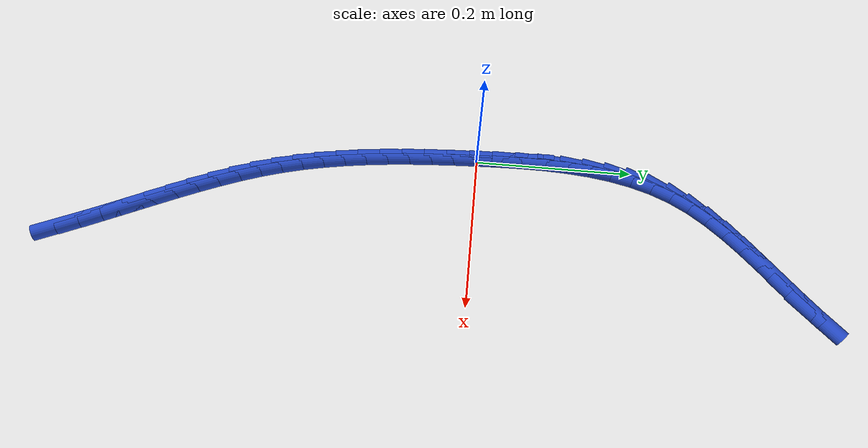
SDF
<sdf version="1.6">
 <world name="default">
  <model name="ground_plane">
   <static>1</static>
   <link name="link">
    <collision name="collision">
     <geometry><plane><normal>0 0 1</normal><size>100 100</size></plane></geometry>
     <surface><friction><ode><mu>100</mu><mu2>50</mu2></ode></friction></surface>
    </collision>
    <visual name="visual">
     <cast_shadows>0</cast_shadows>
     <geometry><plane><normal>0 0 1</normal><size>100 100</size></plane></geometry>
     <material>
      <script><uri>file://media/materials/scripts/gazebo.material</uri><name>Gazebo/WhiteGlow</name></script>
     </material>
    </visual>
   </link>
  </model>
  <model name="line">
   <link name="link_0">
    <pose>-7.589415207398531e-19 -2.0816681711721685e-17 0.01 0 1.57 -1.5354599445000783</pose>
    <collision name="collision">
     <geometry><cylinder><radius>0.01</radius><length>0.08</length></cylinder></geometry>
    </collision>
    <visual name="visual">
     <material>
      <script><name>Gazebo/Blue</name><uri>file://media/materials/scripts/gazebo.material</uri></script>
     </material>
     <geometry><cylinder><radius>0.01</radius><length>0.08</length></cylinder></geometry>
    </visual>
   </link>
   <link name="link_1">
    <pose>-0.001038721061731485 0.029382993443548264 0.01 0 1.57 -1.5521858249136637</pose>
    <collision name="collision">
     <geometry><cylinder><radius>0.01</radius><length>0.08</length></cylinder></geometry>
    </collision>
    <visual name="visual">
     <material>
      <script><name>Gazebo/Blue</name><uri>file://media/materials/scripts/gazebo.material</uri></script>
     </material>
     <geometry><cylinder><radius>0.01</radius><length>0.08</length></cylinder></geometry>
    </visual>
   </link>
   <link name="link_2">
    <pose>-0.0015868101717463985 0.05883012146947917 0.01 0 1.57 1.5636319544767618</pose>
    <collision name="collision">
     <geometry><cylinder><radius>0.01</radius><length>0.08</length></cylinder></geometry>
    </collision>
    <visual name="visual">
     <material>
      <script><name>Gazebo/Blue</name><uri>file://media/materials/scripts/gazebo.material</uri></script>
     </material>
     <geometry><cylinder><radius>0.01</radius><length>0.08</length></cylinder></geometry>
    </visual>
   </link>
   <link name="link_3">
    <pose>-0.001376617637800966 0.08816820278761452 0.01 0 1.57 1.5282789411190123</pose>
    <collision name="collision">
     <geometry><cylinder><radius>0.01</radius><length>0.08</length></cylinder></geometry>
    </collision>
    <visual name="visual">
     <material>
      <script><name>Gazebo/Blue</name><uri>file://media/materials/scripts/gazebo.material</uri></script>
     </material>
     <geometry><cylinder><radius>0.01</radius><length>0.08</length></cylinder></geometry>
    </visual>
   </link>
   <link name="link_4">
    <pose>-0.00014049376765140923 0.11722405610777589 0.01 0 1.57 1.4825760618829906</pose>
    <collision name="collision">
     <geometry><cylinder><radius>0.01</radius><length>0.08</length></cylinder></geometry>
    </collision>
    <visual name="visual">
     <material>
      <script><name>Gazebo/Blue</name><uri>file://media/materials/scripts/gazebo.material</uri></script>
     </material>
     <geometry><cylinder><radius>0.01</radius><length>0.08</length></cylinder></geometry>
    </visual>
   </link>
   <link name="link_5">
    <pose>0.0023892111309460505 0.14582450013978498 0.01 0 1.57 1.425574041161223</pose>
    <collision name="collision">
     <geometry><cylinder><radius>0.01</radius><length>0.08</length></cylinder></geometry>
    </collision>
    <visual name="visual">
     <material>
      <script><name>Gazebo/Blue</name><uri>file://media/materials/scripts/gazebo.material</uri></script>
     </material>
     <geometry><cylinder><radius>0.01</radius><length>0.08</length></cylinder></geometry>
    </visual>
   </link>
   <link name="link_6">
    <pose>0.006480146750235195 0.1737963535934635 0.01 0 1.57 1.356269095207587</pose>
    <collision name="collision">
     <geometry><cylinder><radius>0.01</radius><length>0.08</length></cylinder></geometry>
    </collision>
    <visual name="visual">
     <material>
      <script><name>Gazebo/Blue</name><uri>file://media/materials/scripts/gazebo.material</uri></script>
     </material>
     <geometry><cylinder><radius>0.01</radius><length>0.08</length></cylinder></geometry>
    </visual>
   </link>
   <link name="link_7">
    <pose>0.012399962782459788 0.20096643517863302 0.01 0 1.57 1.2738218459556372</pose>
    <collision name="collision">
     <geometry><cylinder><radius>0.01</radius><length>0.08</length></cylinder></geometry>
    </collision>
    <visual name="visual">
     <material>
      <script><name>Gazebo/Blue</name><uri>file://media/materials/scripts/gazebo.material</uri></script>
     </material>
     <geometry><cylinder><radius>0.01</radius><length>0.08</length></cylinder></geometry>
    </visual>
   </link>
   <link name="link_8">
    <pose>0.020416308919863617 0.2271615636051153 0.01 0 1.57 1.177902288829453</pose>
    <collision name="collision">
     <geometry><cylinder><radius>0.01</radius><length>0.08</length></cylinder></geometry>
    </collision>
    <visual name="visual">
     <material>
      <script><name>Gazebo/Blue</name><uri>file://media/materials/scripts/gazebo.material</uri></script>
     </material>
     <geometry><cylinder><radius>0.01</radius><length>0.08</length></cylinder></geometry>
    </visual>
   </link>
   <link name="link_9">
    <pose>0.03079683485469047 0.2522085575827321 0.01 0 1.57 1.0711286488713487</pose>
    <collision name="collision">
     <geometry><cylinder><radius>0.01</radius><length>0.08</length></cylinder></geometry>
    </collision>
    <visual name="visual">
     <material>
      <script><name>Gazebo/Blue</name><uri>file://media/materials/scripts/gazebo.material</uri></script>
     </material>
     <geometry><cylinder><radius>0.01</radius><length>0.08</length></cylinder></geometry>
    </visual>
   </link>
   <link name="link_10">
    <pose>0.043762873604115037 0.27596149039614104 0.01 0 1.57 0.9739048108310363</pose>
    <collision name="collision">
     <geometry><cylinder><radius>0.01</radius><length>0.08</length></cylinder></geometry>
    </collision>
    <visual name="visual">
     <material>
      <script><name>Gazebo/Blue</name><uri>file://media/materials/scripts/gazebo.material</uri></script>
     </material>
     <geometry><cylinder><radius>0.01</radius><length>0.08</length></cylinder></geometry>
    </visual>
   </link>
   <link name="link_11">
    <pose>0.059100450473078915 0.29853058771144986 0.01 0 1.57 0.8975253995782075</pose>
    <collision name="collision">
     <geometry><cylinder><radius>0.01</radius><length>0.08</length></cylinder></geometry>
    </collision>
    <visual name="visual">
     <material>
      <script><name>Gazebo/Blue</name><uri>file://media/materials/scripts/gazebo.material</uri></script>
     </material>
     <geometry><cylinder><radius>0.01</radius><length>0.08</length></cylinder></geometry>
    </visual>
   </link>
   <link name="link_12">
    <pose>0.07635703975394408 0.32016644810398037 0.01 0 1.57 0.8416465950322856</pose>
    <collision name="collision">
     <geometry><cylinder><radius>0.01</radius><length>0.08</length></cylinder></geometry>
    </collision>
    <visual name="visual">
     <material>
      <script><name>Gazebo/Blue</name><uri>file://media/materials/scripts/gazebo.material</uri></script>
     </material>
     <geometry><cylinder><radius>0.01</radius><length>0.08</length></cylinder></geometry>
    </visual>
   </link>
   <link name="link_13">
    <pose>0.09507767091906177 0.3411211087784433 0.01 0 1.57 0.8051643546833973</pose>
    <collision name="collision">
     <geometry><cylinder><radius>0.01</radius><length>0.08</length></cylinder></geometry>
    </collision>
    <visual name="visual">
     <material>
      <script><name>Gazebo/Blue</name><uri>file://media/materials/scripts/gazebo.material</uri></script>
     </material>
     <geometry><cylinder><radius>0.01</radius><length>0.08</length></cylinder></geometry>
    </visual>
   </link>
   <link name="link_14">
    <pose>0.11480737344078334 0.36164660693954914 0.01 0 1.57 0.7869872844700521</pose>
    <collision name="collision">
     <geometry><cylinder><radius>0.01</radius><length>0.08</length></cylinder></geometry>
    </collision>
    <visual name="visual">
     <material>
      <script><name>Gazebo/Blue</name><uri>file://media/materials/scripts/gazebo.material</uri></script>
     </material>
     <geometry><cylinder><radius>0.01</radius><length>0.08</length></cylinder></geometry>
    </visual>
   </link>
   <link name="link_15">
    <pose>0.13509117679146 0.3819949797920085 0.01 0 1.57 0.7863870098274814</pose>
    <collision name="collision">
     <geometry><cylinder><radius>0.01</radius><length>0.08</length></cylinder></geometry>
    </collision>
    <visual name="visual">
     <material>
      <script><name>Gazebo/Blue</name><uri>file://media/materials/scripts/gazebo.material</uri></script>
     </material>
     <geometry><cylinder><radius>0.01</radius><length>0.08</length></cylinder></geometry>
    </visual>
   </link>
   <link name="link_16">
    <pose>0.15547411044344311 0.40241826454053214 0.01 0 1.57 0.8031301894841878</pose>
    <collision name="collision">
     <geometry><cylinder><radius>0.01</radius><length>0.08</length></cylinder></geometry>
    </collision>
    <visual name="visual">
     <material>
      <script><name>Gazebo/Blue</name><uri>file://media/materials/scripts/gazebo.material</uri></script>
     </material>
     <geometry><cylinder><radius>0.01</radius><length>0.08</length></cylinder></geometry>
    </visual>
   </link>
   <link name="link_17">
    <pose>0.17550120386908394 0.42316849838983056 0.01 0 1.57 0.8374638110827034</pose>
    <collision name="collision">
     <geometry><cylinder><radius>0.01</radius><length>0.08</length></cylinder></geometry>
    </collision>
    <visual name="visual">
     <material>
      <script><name>Gazebo/Blue</name><uri>file://media/materials/scripts/gazebo.material</uri></script>
     </material>
     <geometry><cylinder><radius>0.01</radius><length>0.08</length></cylinder></geometry>
    </visual>
   </link>
   <link name="link_221">
    <pose>0.13928792883972846 -0.5125519699086449 0.01 0 1.57 -1.1660120353206669</pose>
    <collision name="collision">
     <geometry><cylinder><radius>0.01</radius><length>0.08</length></cylinder></geometry>
    </collision>
    <visual name="visual">
     <material>
      <script><name>Gazebo/Blue</name><uri>file://media/materials/scripts/gazebo.material</uri></script>
     </material>
     <geometry><cylinder><radius>0.01</radius><length>0.08</length></cylinder></geometry>
    </visual>
   </link>
   <link name="link_222">
    <pose>0.12753005747773402 -0.4851087894883286 0.01 0 1.57 -1.1522834860843518</pose>
    <collision name="collision">
     <geometry><cylinder><radius>0.01</radius><length>0.08</length></cylinder></geometry>
    </collision>
    <visual name="visual">
     <material>
      <script><name>Gazebo/Blue</name><uri>file://media/materials/scripts/gazebo.material</uri></script>
     </material>
     <geometry><cylinder><radius>0.01</radius><length>0.08</length></cylinder></geometry>
    </visual>
   </link>
   <link name="link_223">
    <pose>0.11559637314626463 -0.45827885939420876 0.01 0 1.57 -1.1444072625120918</pose>
    <collision name="collision">
     <geometry><cylinder><radius>0.01</radius><length>0.08</length></cylinder></geometry>
    </collision>
    <visual name="visual">
     <material>
      <script><name>Gazebo/Blue</name><uri>file://media/materials/scripts/gazebo.material</uri></script>
     </material>
     <geometry><cylinder><radius>0.01</radius><length>0.08</length></cylinder></geometry>
    </visual>
   </link>
   <link name="link_224">
    <pose>0.1036357343697497 -0.43194879105921596 0.01 0 1.57 -1.1429209538510903</pose>
    <collision name="collision">
     <geometry><cylinder><radius>0.01</radius><length>0.08</length></cylinder></geometry>
    </collision>
    <visual name="visual">
     <material>
      <script><name>Gazebo/Blue</name><uri>file://media/materials/scripts/gazebo.material</uri></script>
     </material>
     <geometry><cylinder><radius>0.01</radius><length>0.08</length></cylinder></geometry>
    </visual>
   </link>
   <link name="link_225">
    <pose>0.09180156892171784 -0.4059996338793266 0.01 0 1.57 -1.1481034457232855</pose>
    <collision name="collision">
     <geometry><cylinder><radius>0.01</radius><length>0.08</length></cylinder></geometry>
    </collision>
    <visual name="visual">
     <material>
      <script><name>Gazebo/Blue</name><uri>file://media/materials/scripts/gazebo.material</uri></script>
     </material>
     <geometry><cylinder><radius>0.01</radius><length>0.08</length></cylinder></geometry>
    </visual>
   </link>
   <link name="link_226">
    <pose>0.08024730457569783 -0.3803124372505175 0.01 0 1.57 -1.160182888487372</pose>
    <collision name="collision">
     <geometry><cylinder><radius>0.01</radius><length>0.08</length></cylinder></geometry>
    </collision>
    <visual name="visual">
     <material>
      <script><name>Gazebo/Blue</name><uri>file://media/materials/scripts/gazebo.material</uri></script>
     </material>
     <geometry><cylinder><radius>0.01</radius><length>0.08</length></cylinder></geometry>
    </visual>
   </link>
   <link name="link_227">
    <pose>0.06912636910521856 -0.35476825056876543 0.01 0 1.57 -1.1793221345604379</pose>
    <collision name="collision">
     <geometry><cylinder><radius>0.01</radius><length>0.08</length></cylinder></geometry>
    </collision>
    <visual name="visual">
     <material>
      <script><name>Gazebo/Blue</name><uri>file://media/materials/scripts/gazebo.material</uri></script>
     </material>
     <geometry><cylinder><radius>0.01</radius><length>0.08</length></cylinder></geometry>
    </visual>
   </link>
   <link name="link_228">
    <pose>0.058592190283808916 -0.32924812323004776 0.01 0 1.57 -1.205594308238063</pose>
    <collision name="collision">
     <geometry><cylinder><radius>0.01</radius><length>0.08</length></cylinder></geometry>
    </collision>
    <visual name="visual">
     <material>
      <script><name>Gazebo/Blue</name><uri>file://media/materials/scripts/gazebo.material</uri></script>
     </material>
     <geometry><cylinder><radius>0.01</radius><length>0.08</length></cylinder></geometry>
    </visual>
   </link>
   <link name="link_229">
    <pose>0.04879819588499771 -0.3036331046303412 0.01 0 1.57 -1.238948687568586</pose>
    <collision name="collision">
     <geometry><cylinder><radius>0.01</radius><length>0.08</length></cylinder></geometry>
    </collision>
    <visual name="visual">
     <material>
      <script><name>Gazebo/Blue</name><uri>file://media/materials/scripts/gazebo.material</uri></script>
     </material>
     <geometry><cylinder><radius>0.01</radius><length>0.08</length></cylinder></geometry>
    </visual>
   </link>
   <link name="link_230">
    <pose>0.03989781368231356 -0.27780424416562205 0.01 0 1.57 -1.2791344835506382</pose>
    <collision name="collision">
     <geometry><cylinder><radius>0.01</radius><length>0.08</length></cylinder></geometry>
    </collision>
    <visual name="visual">
     <material>
      <script><name>Gazebo/Blue</name><uri>file://media/materials/scripts/gazebo.material</uri></script>
     </material>
     <geometry><cylinder><radius>0.01</radius><length>0.08</length></cylinder></geometry>
    </visual>
   </link>
   <link name="link_231">
    <pose>0.03204361098686194 -0.25164306007071685 0.01 0 1.57 -1.3223539555740307</pose>
    <collision name="collision">
     <geometry><cylinder><radius>0.01</radius><length>0.08</length></cylinder></geometry>
    </collision>
    <visual name="visual">
     <material>
      <script><name>Gazebo/Blue</name><uri>file://media/materials/scripts/gazebo.material</uri></script>
     </material>
     <geometry><cylinder><radius>0.01</radius><length>0.08</length></cylinder></geometry>
    </visual>
   </link>
   <link name="link_232">
    <pose>0.025304196298218406 -0.22507681709001515 0.01 0 1.57 -1.3621170022476796</pose>
    <collision name="collision">
     <geometry><cylinder><radius>0.01</radius><length>0.08</length></cylinder></geometry>
    </collision>
    <visual name="visual">
     <material>
      <script><name>Gazebo/Blue</name><uri>file://media/materials/scripts/gazebo.material</uri></script>
     </material>
     <geometry><cylinder><radius>0.01</radius><length>0.08</length></cylinder></geometry>
    </visual>
   </link>
   <link name="link_233">
    <pose>0.019594970138455875 -0.19811625816490122 0.01 0 1.57 -1.39768307357428</pose>
    <collision name="collision">
     <geometry><cylinder><radius>0.01</radius><length>0.08</length></cylinder></geometry>
    </collision>
    <visual name="visual">
     <material>
      <script><name>Gazebo/Blue</name><uri>file://media/materials/scripts/gazebo.material</uri></script>
     </material>
     <geometry><cylinder><radius>0.01</radius><length>0.08</length></cylinder></geometry>
    </visual>
   </link>
   <link name="link_234">
    <pose>0.014815031723898316 -0.17078100830435652 0.01 0 1.57 -1.429048200572334</pose>
    <collision name="collision">
     <geometry><cylinder><radius>0.01</radius><length>0.08</length></cylinder></geometry>
    </collision>
    <visual name="visual">
     <material>
      <script><name>Gazebo/Blue</name><uri>file://media/materials/scripts/gazebo.material</uri></script>
     </material>
     <geometry><cylinder><radius>0.01</radius><length>0.08</length></cylinder></geometry>
    </visual>
   </link>
   <link name="link_235">
    <pose>0.010863480270869709 -0.1430906925173625 0.01 0 1.57 -1.4562604482949668</pose>
    <collision name="collision">
     <geometry><cylinder><radius>0.01</radius><length>0.08</length></cylinder></geometry>
    </collision>
    <visual name="visual">
     <material>
      <script><name>Gazebo/Blue</name><uri>file://media/materials/scripts/gazebo.material</uri></script>
     </material>
     <geometry><cylinder><radius>0.01</radius><length>0.08</length></cylinder></geometry>
    </visual>
   </link>
   <link name="link_236">
    <pose>0.007639414995694028 -0.11506493581290055 0.01 0 1.57 -1.4794025362075773</pose>
    <collision name="collision">
     <geometry><cylinder><radius>0.01</radius><length>0.08</length></cylinder></geometry>
    </collision>
    <visual name="visual">
     <material>
      <script><name>Gazebo/Blue</name><uri>file://media/materials/scripts/gazebo.material</uri></script>
     </material>
     <geometry><cylinder><radius>0.01</radius><length>0.08</length></cylinder></geometry>
    </visual>
   </link>
   <link name="link_237">
    <pose>0.005041935114695247 -0.08672336319995198 0.01 0 1.57 -1.4985772745874164</pose>
    <collision name="collision">
     <geometry><cylinder><radius>0.01</radius><length>0.08</length></cylinder></geometry>
    </collision>
    <visual name="visual">
     <material>
      <script><name>Gazebo/Blue</name><uri>file://media/materials/scripts/gazebo.material</uri></script>
     </material>
     <geometry><cylinder><radius>0.01</radius><length>0.08</length></cylinder></geometry>
    </visual>
   </link>
   <link name="link_238">
    <pose>0.0029701398441972886 -0.05808559968749746 0.01 0 1.57 -1.5138960418556489</pose>
    <collision name="collision">
     <geometry><cylinder><radius>0.01</radius><length>0.08</length></cylinder></geometry>
    </collision>
    <visual name="visual">
     <material>
      <script><name>Gazebo/Blue</name><uri>file://media/materials/scripts/gazebo.material</uri></script>
     </material>
     <geometry><cylinder><radius>0.01</radius><length>0.08</length></cylinder></geometry>
    </visual>
   </link>
   <link name="link_239">
    <pose>0.0013231284005242325 -0.029171270284519886 0.01 0 1.57 -1.5254701494405867</pose>
    <collision name="collision">
     <geometry><cylinder><radius>0.01</radius><length>0.08</length></cylinder></geometry>
    </collision>
    <visual name="visual">
     <material>
      <script><name>Gazebo/Blue</name><uri>file://media/materials/scripts/gazebo.material</uri></script>
     </material>
     <geometry><cylinder><radius>0.01</radius><length>0.08</length></cylinder></geometry>
    </visual>
   </link>
   <link name="link_240">
    <pose>-5.7462715141731735e-18 9.020562075079397e-17 0.01 0 1.57 -1.5334047510275375</pose>
    <collision name="collision">
     <geometry><cylinder><radius>0.01</radius><length>0.08</length></cylinder></geometry>
    </collision>
    <visual name="visual">
     <material>
      <script><name>Gazebo/Blue</name><uri>file://media/materials/scripts/gazebo.material</uri></script>
     </material>
     <geometry><cylinder><radius>0.01</radius><length>0.08</length></cylinder></geometry>
    </visual>
   </link>
   <link name="link_241">
    <pose>-0.0011001461410514522 0.0294085861570811 0.01 0 1.57 -1.5377948946372386</pose>
    <collision name="collision">
     <geometry><cylinder><radius>0.01</radius><length>0.08</length></cylinder></geometry>
    </collision>
    <visual name="visual">
     <material>
      <script><name>Gazebo/Blue</name><uri>file://media/materials/scripts/gazebo.material</uri></script>
     </material>
     <geometry><cylinder><radius>0.01</radius><length>0.08</length></cylinder></geometry>
    </visual>
   </link>
   <link name="link_242">
    <pose>-0.0020782108063061347 0.0590348631777417 0.01 0 1.57 -1.5356077475083603</pose>
    <collision name="collision">
     <geometry><cylinder><radius>0.01</radius><length>0.08</length></cylinder></geometry>
    </collision>
    <visual name="visual">
     <material>
      <script><name>Gazebo/Blue</name><uri>file://media/materials/scripts/gazebo.material</uri></script>
     </material>
     <geometry><cylinder><radius>0.01</radius><length>0.08</length></cylinder></geometry>
    </visual>
   </link>
  </model>
 </world>
</sdf>
